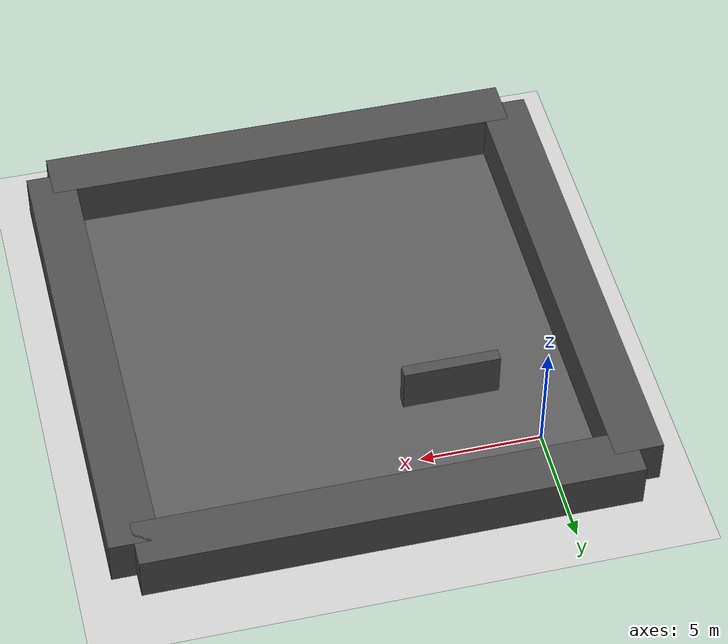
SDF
<sdf version="1.6">
 <world name="default">
  <plugin name="gazebo_ros_state" filename="libgazebo_ros_state.so">
   <ros><namespace>/gazebo</namespace></ros>
   <update_rate>1.0</update_rate>
  </plugin>
  <model name="ground_plane">
   <static>1</static>
   <link name="link">
    <collision name="collision">
     <geometry><plane><normal>0 0 1</normal><size>40 40</size></plane></geometry>
     <surface><friction><ode><mu>100</mu><mu2>50</mu2></ode></friction></surface>
    </collision>
    <visual name="visual">
     <cast_shadows>0</cast_shadows>
     <geometry><plane><normal>0 0 1</normal><size>40 40</size></plane></geometry>
     <material>
      <script><uri>file://media/materials/scripts/gazebo.material</uri><name>Gazebo/Grey</name></script>
     </material>
    </visual>
   </link>
  </model>
  <model name="crater_plane">
   <static>1</static>
   <link name="link">
    <collision name="collision">
     <geometry><box><size>20 20 0.1</size></box></geometry>
     <surface><friction><ode><mu>100</mu><mu2>50</mu2></ode></friction></surface>
    </collision>
    <visual name="visual">
     <cast_shadows>0</cast_shadows>
     <geometry><box><size>20 20 0.1</size></box></geometry>
     <material>
      <ambient>0.35 0.35 0.35 1</ambient>
      <diffuse>0.35 0.35 0.35 1</diffuse>
      <specular>.35 .35 .35 1.000000 1.500000</specular>
      <emissive>0 0 0 1</emissive>
     </material>
    </visual>
   </link>
   <pose>7 -7 0 0 0 0</pose>
  </model>
  <model name="rover_obstacle">
   <static>1</static>
   <link name="link">
    <collision name="collision"><geometry><box><size>4 0.5 2</size></box></geometry></collision>
    <visual name="visual">
     <geometry><box><size>4 0.5 2</size></box></geometry>
     <material>
      <script><uri>file://media/materials/scripts/gazebo.material</uri><name>Gazebo/DarkGrey</name></script>
     </material>
    </visual>
   </link>
   <pose>3 -3 1 0 0 0</pose>
  </model>
  <model name="gray_wall_north">
   <static>1</static>
   <link name="link">
    <collision name="collision"><geometry><box><size>20 2 2</size></box></geometry></collision>
    <visual name="visual">
     <geometry><box><size>20 2 2</size></box></geometry>
     <material>
      <script><uri>file://media/materials/scripts/gazebo.material</uri><name>Gazebo/DarkGrey</name></script>
     </material>
    </visual>
   </link>
   <pose>7 3 1 0 0 0</pose>
  </model>
  <model name="gray_wall_south">
   <static>1</static>
   <link name="link">
    <collision name="collision"><geometry><box><size>20 2 2</size></box></geometry></collision>
    <visual name="visual">
     <geometry><box><size>20 2 2</size></box></geometry>
     <material>
      <script><uri>file://media/materials/scripts/gazebo.material</uri><name>Gazebo/DarkGrey</name></script>
     </material>
    </visual>
   </link>
   <pose>7 -17 1 0 0 0</pose>
  </model>
  <model name="gray_wall_east">
   <static>1</static>
   <link name="link">
    <collision name="collision"><geometry><box><size>20 2 2</size></box></geometry></collision>
    <visual name="visual">
     <geometry><box><size>20 2 2</size></box></geometry>
     <material>
      <script><uri>file://media/materials/scripts/gazebo.material</uri><name>Gazebo/DarkGrey</name></script>
     </material>
    </visual>
   </link>
   <pose>-3 -7 1 0 0 1.5708</pose>
  </model>
  <model name="gray_wall_west">
   <static>1</static>
   <link name="link">
    <collision name="collision"><geometry><box><size>20 2 2</size></box></geometry></collision>
    <visual name="visual">
     <geometry><box><size>20 2 2</size></box></geometry>
     <material>
      <script><uri>file://media/materials/scripts/gazebo.material</uri><name>Gazebo/DarkGrey</name></script>
     </material>
    </visual>
   </link>
   <pose>17 -7 1 0 0 1.5708</pose>
  </model>
  <light name="sun" type="directional">
   <cast_shadows>0</cast_shadows>
   <pose>0 0 10 0 -0 0</pose>
   <diffuse>0.8 0.8 0.8 1</diffuse>
   <specular>0.2 0.2 0.2 1</specular>
   <attenuation>
    <range>500</range>
    <constant>0.9</constant>
    <linear>0.01</linear>
    <quadratic>0.001</quadratic>
   </attenuation>
   <direction>-0.5 0.1 -0.9</direction>
  </light>
  <gravity>0 0 -9.8</gravity>
  <physics name="default_physics" default="0" type="ode">
   <max_step_size>0.001</max_step_size>
   <real_time_factor>1</real_time_factor>
   <real_time_update_rate>1000</real_time_update_rate>
  </physics>
  <scene><ambient>0.4 0.4 0.4 1</ambient><background>0.7 0.7 0.7 1</background><shadows>0</shadows></scene>
  <audio><device>default</device></audio>
 </world>
</sdf>
